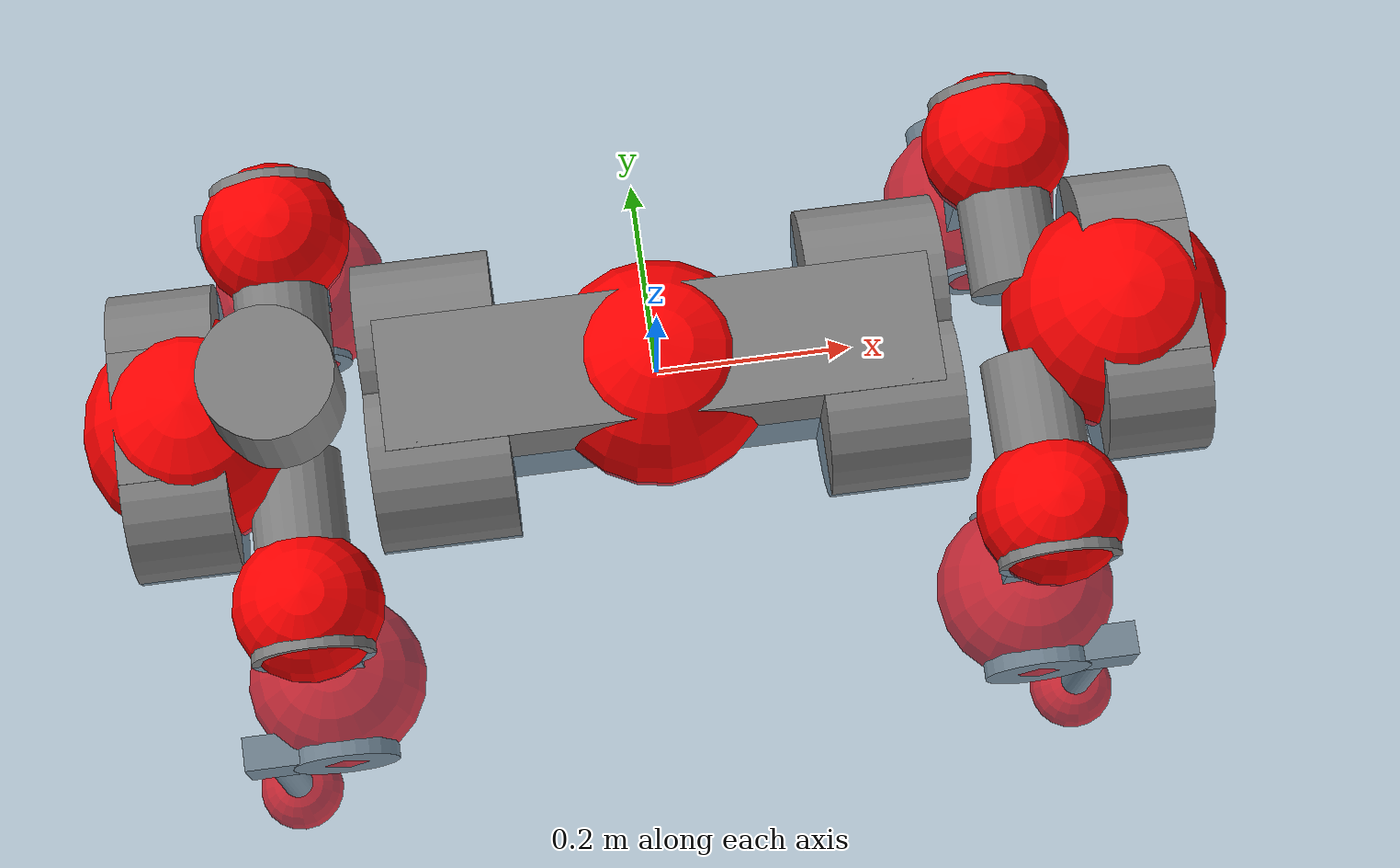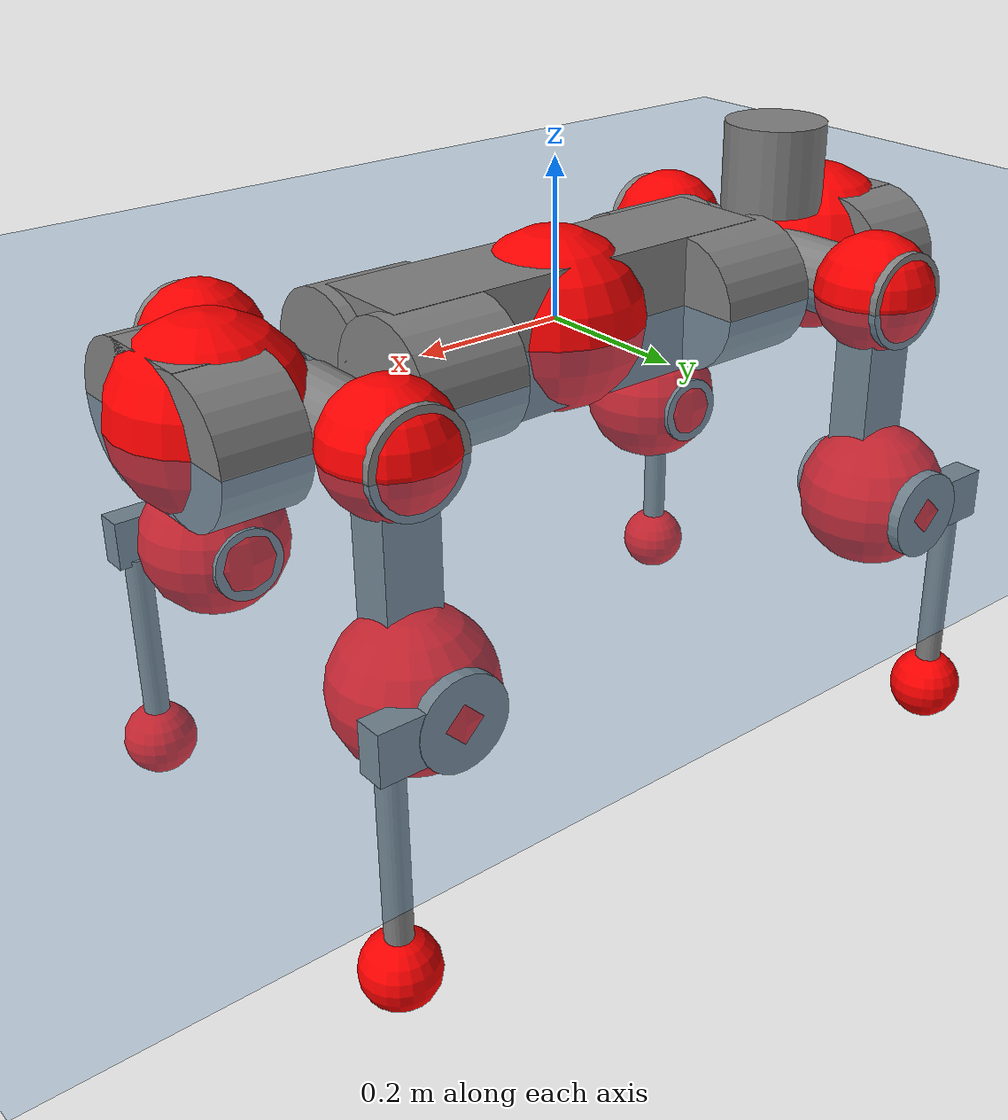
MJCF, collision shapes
<mujoco model="anymal_c">
  <compiler angle="radian" assetdir="assets" balanceinertia="true" inertiafromgeom="false"/>

  <option timestep="0.005" density="1.2" viscosity="2e-05"/>

  <size nkey="1"/>

  <visual>
    <quality shadowsize="8192"/>
    <map shadowclip="0.5"/>
  </visual>

  <default>
    <default class="/">
      <material specular="0" shininess="0.25"/>
      <geom contype="0" conaffinity="0" group="1" solref="-1000 -80"/>
      <site size="0.01 0.005 0.005" group="5"/>
      <general forcelimited="true" forcerange="-80 80" biastype="affine" gainprm="80" biasprm="0 -80 -2"/>
      <default class="anymal_c">
        <joint armature="0.01" damping="0.01" frictionloss="0.1"/>
        <default class="visual">
          <geom type="mesh" group="2"/>
          <default class="visual_zflip"/>
        </default>
        <default class="collision">
          <geom type="cylinder" group="3"/>
          <default class="foot">
            <geom size="0.03 0 0" type="sphere" condim="6" priority="1" friction="0.8 0.02 0.01" solimp="0.015 1 0.03"/>
          </default>
        </default>
      </default>
      <default class="reward_collision_sphere">
        <geom group="5" rgba="1 0 0 1"/>
      </default>
    </default>
  </default>

  <asset>
    <texture type="skybox" colorspace="auto" name="//unnamed_texture_0" builtin="gradient" rgb1="0.95 0.95 0.95" rgb2="0.95 0.95 0.95" width="100" height="600"/>
    <texture type="2d" colorspace="auto" name="texplane" builtin="checker" rgb1="0.345 0.575 0.748" rgb2="0.345 0.575 0.748" markrgb="1 1 1" width="512" height="512"/>
    <texture type="2d" colorspace="linear" name="base" file="base.png"/>
    <texture type="2d" colorspace="linear" name="top_shell" file="top_shell.png"/>
    <texture type="2d" colorspace="linear" name="bottom_shell" file="bottom_shell.png"/>
    <texture type="2d" colorspace="linear" name="remote" file="remote.png"/>
    <texture type="2d" colorspace="linear" name="hatch" file="hatch.png"/>
    <texture type="2d" colorspace="linear" name="handle" file="handle.png"/>
    <texture type="2d" colorspace="linear" name="face" file="face.png"/>
    <texture type="2d" colorspace="linear" name="battery" file="battery.png"/>
    <texture type="2d" colorspace="linear" name="lidar_cage" file="lidar_cage.png"/>
    <texture type="2d" colorspace="linear" name="depth_camera" file="depth_camera.png"/>
    <texture type="2d" colorspace="linear" name="wide_angle_camera" file="wide_angle_camera.png"/>
    <texture type="2d" colorspace="linear" name="lidar" file="lidar.png"/>
    <texture type="2d" colorspace="linear" name="drive" file="drive.png"/>
    <texture type="2d" colorspace="linear" name="hip_l" file="hip_l.png"/>
    <texture type="2d" colorspace="linear" name="shank_l" file="shank_l.png"/>
    <texture type="2d" colorspace="linear" name="foot" file="foot.png"/>
    <texture type="2d" colorspace="linear" name="thigh" file="thigh.png"/>
    <texture type="2d" colorspace="linear" name="shank_r" file="shank_r.png"/>
    <texture type="2d" colorspace="linear" name="hip_r" file="hip_r.png"/>
    <material name="MatPlane" class="/" texture="texplane" texuniform="true" texrepeat="2 2" specular="0.9" shininess="0.5"/>
    <material name="black_plastic" class="/" rgba="0.007 0.007 0.007 1"/>
    <material name="green" class="/" rgba="0.052 0.178 0.033 1"/>
    <material name="red" class="/" rgba="0.178 0.006 0.005 1"/>
    <material name="yellow" class="/" rgba="0.178 0.119 0.006 1"/>
    <material name="lwl" class="/" rgba="0.8 0.8 0.8 1"/>
    <material name="base" class="/" texture="base"/>
    <material name="top_shell" class="/" texture="top_shell"/>
    <material name="bottom_shell" class="/" texture="bottom_shell"/>
    <material name="hip_l" class="/" texture="hip_l"/>
    <material name="thigh" class="/" texture="thigh"/>
    <material name="shank_l" class="/" texture="shank_l"/>
    <material name="foot" class="/" texture="foot"/>
    <material name="hip_r" class="/" texture="hip_r"/>
    <material name="shank" class="/" texture="shank_r"/>
    <material name="hatch" class="/" texture="hatch"/>
    <material name="remote" class="/" texture="remote"/>
    <material name="handle" class="/" texture="handle"/>
    <material name="face" class="/" texture="face"/>
    <material name="depth_camera" class="/" texture="depth_camera"/>
    <material name="wide_angle_camera" class="/" texture="wide_angle_camera"/>
    <material name="battery" class="/" texture="battery"/>
    <material name="lidar_cage" class="/" texture="lidar_cage"/>
    <material name="lidar" class="/" texture="lidar"/>
    <material name="drive" class="/" texture="drive"/>
    <mesh name="base_0" class="/" file="base_0.obj"/>
    <mesh name="base_1" class="/" file="base_1.obj"/>
    <mesh name="base_2" class="/" file="base_2.obj"/>
    <mesh name="base_3" class="/" file="base_3.obj"/>
    <mesh name="base_4" class="/" file="base_4.obj"/>
    <mesh name="base_5" class="/" file="base_5.obj"/>
    <mesh name="top_shell" class="/" file="top_shell.obj"/>
    <mesh name="bottom_shell" class="/" file="bottom_shell.obj"/>
    <mesh name="remote" class="/" file="remote.obj"/>
    <mesh name="handle" class="/" file="handle.obj"/>
    <mesh name="face" class="/" file="face.obj"/>
    <mesh name="wide_angle_camera" class="/" file="wide_angle_camera.obj"/>
    <mesh name="depth_camera" class="/" file="depth_camera.obj"/>
    <mesh name="battery" class="/" file="battery.obj"/>
    <mesh name="lidar_cage" class="/" file="lidar_cage.obj"/>
    <mesh name="lidar" class="/" file="lidar.obj"/>
    <mesh name="drive" class="/" file="drive.obj"/>
    <mesh name="hip_l" class="/" file="hip_l.obj"/>
    <mesh name="thigh" class="/" file="thigh.obj"/>
    <mesh name="shank_l" class="/" file="shank_l.obj"/>
    <mesh name="foot" class="/" file="foot.obj"/>
    <mesh name="hip_r" class="/" file="hip_r.obj"/>
    <mesh name="hatch" class="/" file="hatch.obj"/>
    <mesh name="shank_r" class="/" file="shank_r.obj"/>
  </asset>

  <worldbody>
    <geom name="floor" class="/" size="100 100 0.125" type="plane" group="0" material="MatPlane"/>
    <light name="toplight_shadow" class="/" pos="0 0 5" dir="0.0990148 0.0990148 -0.990148" type="directional" ambient="0.04 0.04 0.04" diffuse="0.55 0.55 0.55" specular="0.12 0.12 0.12"/>
    <light name="toplight_fill" class="/" pos="0 0 5" dir="0.0990148 0.0990148 -0.990148" type="directional" castshadow="false" ambient="0.04 0.04 0.04" diffuse="0.3 0.3 0.3" specular="0.08 0.08 0.08"/>
    <body name="trunk" childclass="anymal_c" pos="0.00158216 -0.00102489 -0.000369642" quat="1 -0.000174534 7.73971e-05 4.30785e-05">
      <inertial pos="0.00250208 -0.000463811 0.0472835" quat="0.497814 0.501641 0.501848 0.498684" mass="17.0484" diaginertia="0.836187 0.35697 0.176469"/>
      <joint name="//unnamed_joint_0" type="free" armature="0" damping="0" frictionloss="0"/>
      <geom name="//unnamed_geom_1" class="visual" material="green" mesh="base_0"/>
      <geom name="//unnamed_geom_2" class="visual" material="yellow" mesh="base_1"/>
      <geom name="//unnamed_geom_3" class="visual" material="red" mesh="base_2"/>
      <geom name="//unnamed_geom_4" class="visual" material="black_plastic" mesh="base_3"/>
      <geom name="//unnamed_geom_5" class="visual" material="lwl" mesh="base_4"/>
      <geom name="//unnamed_geom_6" class="visual" material="base" mesh="base_5"/>
      <geom name="trunk_1" class="collision" size="0.280464 0.0676981 0.0870404" type="box"/>
      <geom name="trunk_2" class="collision" size="0.0870404 0.0701159" pos="0.228098 0.0625307 0" quat="0.707107 0 0.707107 0"/>
      <geom name="trunk_3" class="collision" size="0.0870404 0.0701159" pos="-0.228098 0.0625307 0" quat="0.707107 0 0.707107 0"/>
      <geom name="trunk_4" class="collision" size="0.0870404 0.0701159" pos="0.228098 -0.0625307 0" quat="0.707107 0 0.707107 0"/>
      <geom name="trunk_5" class="collision" size="0.0870404 0.0701159" pos="-0.228098 -0.0625307 0" quat="0.707107 0 0.707107 0"/>
      <geom name="//unnamed_geom_12" class="visual" material="top_shell" mesh="top_shell"/>
      <geom name="//unnamed_geom_13" class="visual" material="bottom_shell" mesh="bottom_shell"/>
      <geom name="//unnamed_geom_14" class="visual" material="remote" mesh="remote"/>
      <geom name="//unnamed_geom_15" class="visual" material="handle" mesh="handle"/>
      <geom name="//unnamed_geom_16" class="visual" pos="0.434696 0 0" quat="1 0 0 0" material="face" mesh="face"/>
      <geom name="trunk_6" class="collision" size="0.0531914 0.0676981 0.0870404" pos="0.492376 0 0" type="box"/>
      <geom name="//unnamed_geom_18" class="collision" size="0.0870404 0.0531914" pos="0.492376 0.0625307 0" quat="0.707107 0 0.707107 0"/>
      <geom name="//unnamed_geom_19" class="collision" size="0.0870404 0.0531914" pos="0.492376 -0.0625307 0" quat="0.707107 0 0.707107 0"/>
      <geom name="//unnamed_geom_20" class="visual" pos="0.48414 0 -0.0273329" quat="0.965926 0 0.258819 0" material="depth_camera" mesh="depth_camera"/>
      <geom name="//unnamed_geom_21" class="visual" pos="0.537996 0 0.0143611" material="wide_angle_camera" mesh="wide_angle_camera"/>
      <geom name="//unnamed_geom_22" class="visual_zflip" pos="-0.434696 0 0" quat="0 0 0 1" material="face" mesh="face"/>
      <geom name="trunk_7" class="collision" size="0.0531914 0.0676981 0.0870404" pos="-0.492376 0 0" quat="0 0 0 1" type="box"/>
      <geom name="//unnamed_geom_24" class="collision" size="0.0870404 0.0531914" pos="-0.492376 -0.0625307 0" quat="0 -0.707107 0 0.707107"/>
      <geom name="//unnamed_geom_25" class="collision" size="0.0870404 0.0531914" pos="-0.492376 0.0625307 0" quat="0 -0.707107 0 0.707107"/>
      <geom name="//unnamed_geom_26" class="visual" pos="-0.48414 0 -0.0273329" quat="0 -0.258819 0 0.965926" material="depth_camera" mesh="depth_camera"/>
      <geom name="//unnamed_geom_27" class="visual_zflip" pos="-0.537996 0 0.0143611" quat="0 0 0 1" material="wide_angle_camera" mesh="wide_angle_camera"/>
      <geom name="//unnamed_geom_28" class="visual" material="battery" mesh="battery"/>
      <geom name="//unnamed_geom_29" class="visual" pos="0 0.0662582 0.0285479" quat="0.683013 -0.183013 0.183013 0.683013" material="depth_camera" mesh="depth_camera"/>
      <geom name="//unnamed_geom_30" class="visual" pos="0 -0.0662582 0.0285479" quat="0.683013 0.183013 0.183013 -0.683013" material="depth_camera" mesh="depth_camera"/>
      <geom name="//unnamed_geom_31" class="visual" pos="-0.381736 0 0.0705106" quat="1 0 0 0" material="lidar_cage" mesh="lidar_cage"/>
      <geom name="trunk_8" class="collision" size="0.0676981 0.058027" pos="-0.381736 0 0.12807"/>
      <geom name="//unnamed_geom_33" class="visual" pos="-0.381736 -6.10637e-05 0.136416" quat="0.707107 0 0 -0.707107" material="lidar" mesh="lidar"/>
      <geom name="//unnamed_geom_34" class="visual" pos="0.314512 0.0929262 -1.13905e-09" quat="0.258819 0.965926 0 0" material="drive" mesh="drive"/>
      <geom name="//unnamed_geom_35" class="visual" pos="0.314512 -0.0929262 1.13905e-09" quat="0.258819 -0.965926 0 0" material="drive" mesh="drive"/>
      <geom name="//unnamed_geom_36" class="visual" pos="-0.314512 0.0929262 1.13905e-09" quat="0 0 0.965926 -0.258819" material="drive" mesh="drive"/>
      <geom name="//unnamed_geom_37" class="visual" pos="-0.314512 -0.0929262 -1.13905e-09" quat="0 0 -0.965926 -0.258819" material="drive" mesh="drive"/>
      <geom name="//unnamed_geom_38" class="visual" pos="0.121652 0 0.0700309" quat="1 0 0 0" material="hatch" mesh="hatch"/>
      <geom name="//unnamed_geom_39" class="reward_collision_sphere" size="0.116054"/>
      <geom name="//unnamed_geom_40" class="reward_collision_sphere" size="0.116054" pos="0.471926 0 0"/>
      <geom name="//unnamed_geom_41" class="reward_collision_sphere" size="0.116054" pos="-0.471926 0 0"/>
      <site name="imu" pos="0.257781 0.0051303 0.0339783" size="0.00967116"/>
      <camera name="track" pos="0 -1.78659 0" quat="0.707107 0.707107 0 0" mode="trackcom"/>
      <camera name="ego_camera" pos="0.471926 0 -0.0383731" quat="-0.5 -0.5 0.5 0.5"/>
      <body name="LF_HIP" pos="0.315362 0.0933498 0.00129305" quat="0.258963 0.965887 -0.00046686 -0.000369088">
        <inertial pos="0.0575915 -0.012357 -0.00766713" quat="-0.128077 0.709287 -0.13494 0.679926" mass="2.52513" diaginertia="0.00745083 0.00278866 0.00266033"/>
        <joint name="LF_HAA" pos="0 0 0" axis="0.999901 0.00971774 -0.0101859" range="-0.72788 0.491028" armature="0.00866821" damping="0.0104012" frictionloss="0.09251"/>
        <geom name="//unnamed_geom_42" class="visual" pos="0 -6.70051e-05 1.10055e-05" quat="0.258819 -0.965926 0 0" material="hip_l" mesh="hip_l"/>
        <geom name="//unnamed_geom_43" class="visual" pos="0.0628186 -0.0740951 -0.0432672" quat="0.183013 -0.683013 0.683013 0.183013" material="drive" mesh="drive"/>
        <geom name="//unnamed_geom_44" class="collision" size="0.0483558 0.0676981" pos="0.0628186 -0.0106836 -0.00662416" quat="-0.353553 -0.612372 0.612372 -0.353553"/>
        <body name="LF_THIGH" pos="0.063645 -0.0646048 -0.0404569" quat="0.18311 -0.683219 0.682707 0.183285">
          <inertial pos="0.0325691 4.66296e-05 -0.237824" quat="0.992682 -0.0074287 -0.083003 0.0873964" mass="2.81199" diaginertia="0.0386912 0.0171895 0.00345233"/>
          <joint name="LF_HFE" pos="0 0 0" axis="0.999993 -0.0032983 -0.00151042" range="-3.16348 3.13789" armature="0.0102585" damping="0.0118485" frictionloss="0.0991629"/>
          <geom name="//unnamed_geom_45" class="visual" pos="0.00309242 4.87292e-06 0" quat="0.707107 0 0 -0.707107" material="thigh" mesh="thigh"/>
          <geom name="//unnamed_geom_46" class="collision" size="0.0628625 0.0386846" pos="0.041949 0 0" quat="0.5 0.5 -0.5 -0.5"/>
          <geom name="//unnamed_geom_47" class="collision" size="0.0362668 0.0290135 0.136667" pos="0.0314617 0 -0.135566" quat="0.707107 0 0 -0.707107" type="box"/>
          <geom name="//unnamed_geom_48" class="visual" pos="0.105187 0 -0.273408" quat="1 0 0 0" material="drive" mesh="drive"/>
          <geom name="//unnamed_geom_49" class="collision" size="0.0483558 0.0676981" pos="0.0317763 0 -0.273408" quat="0.707107 0 0.707107 0"/>
          <geom name="//unnamed_geom_50" class="reward_collision_sphere" size="0.0773693" pos="0.0262181 0 0"/>
          <body name="LF_SHANK" pos="0.105486 -0.0026221 -0.272956" quat="1 9.7726e-05 3.52795e-05 5.72686e-05">
            <inertial pos="0.00482691 -0.0544552 -0.0774996" quat="0.993558 -0.10981 0.0059257 -0.0273873" mass="0.52782" diaginertia="0.0127347 0.00524498 0.000891767"/>
            <joint name="LF_KFE" pos="0 0 0" axis="0.999992 0.00239099 -0.00309394" range="-3.14137 3.13363" armature="0.0097133" damping="0.00438333" frictionloss="0.0992267"/>
            <geom name="//unnamed_geom_51" class="visual" pos="0.00100837 0.00537668 0" quat="0.707107 0 0 -0.707107" material="shank_l" mesh="shank_l"/>
            <geom name="LF_kfe_act" class="collision" size="0.058027 0.0193423" pos="0.0209745 0 0" quat="0.5 0.5 -0.5 -0.5"/>
            <geom name="//unnamed_geom_53" class="collision" size="0.0556082 0.0326402 0.0183752" pos="0.0209745 -0.0513636 0" quat="0.5 0.5 -0.5 -0.5" type="box"/>
            <geom name="//unnamed_geom_54" class="visual" pos="0.0136856 -0.0768327 -0.324224" quat="0.382683 0 0 -0.92388" material="foot" mesh="foot"/>
            <geom name="LF_calf" class="collision" size="0.0169245 0.136607" pos="0.0136859 -0.0785654 -0.162112" quat="0.707107 0 0 -0.707107"/>
            <geom name="LF_foot" class="foot" size="0.0298194" pos="0.0136859 -0.0785654 -0.302639" quat="0.707107 0 0 -0.707107"/>
            <geom name="//unnamed_geom_57" class="reward_collision_sphere" size="0.0967116" pos="-0.0524362 0 0"/>
            <geom name="//unnamed_geom_58" class="reward_collision_sphere" size="0.0483558" pos="0.0136859 -0.0785654 -0.302639"/>
            <site name="LF_foot" class="foot" pos="0.0136859 -0.0785654 -0.302639" quat="0.707107 0 0 -0.707107" size="0.00967116"/>
          </body>
        </body>
      </body>
      <body name="RF_HIP" pos="0.312887 -0.0913337 -0.00034383" quat="0.258927 -0.965897 -3.58949e-05 6.53422e-05">
        <inertial pos="0.0617107 0.0131497 -0.00984022" quat="0.134019 0.679622 0.128246 0.709723" mass="2.59189" diaginertia="0.00759802 0.00286905 0.00273957"/>
        <joint name="RF_HAA" pos="0 0 0" axis="0.999953 -0.0076084 0.00596227" range="-0.530995 0.73227" armature="0.00980363" damping="0.0131928" frictionloss="0.0909973"/>
        <geom name="//unnamed_geom_59" class="visual" pos="0 6.70046e-05 1.10055e-05" quat="0.258819 0.965926 0 0" material="hip_r" mesh="hip_r"/>
        <geom name="//unnamed_geom_60" class="visual" pos="0.0628186 0.0740951 -0.0432672" quat="0.183013 0.683013 0.683013 -0.183013" material="drive" mesh="drive"/>
        <geom name="//unnamed_geom_61" class="collision" size="0.0483558 0.0676981" pos="0.0628186 0.0106836 -0.00662416" quat="-0.353553 0.612372 0.612372 0.353553"/>
        <body name="RF_THIGH" pos="0.0632536 0.0657346 -0.0409843" quat="0.183066 0.682934 0.683103 -0.182916">
          <inertial pos="0.0332162 0.00226388 -0.235932" quat="0.992763 -0.00574629 -0.080868 0.0885924" mass="2.74768" diaginertia="0.0381187 0.0168746 0.00336416"/>
          <joint name="RF_HFE" pos="0 0 0" axis="0.999988 -0.00284932 0.00407568" stiffness="0.00302896" range="-3.15275 3.12311" armature="0.0100379" damping="0.00293838" frictionloss="0.0970116"/>
          <geom name="//unnamed_geom_62" class="visual" pos="0.00309242 4.87292e-06 0" quat="0.707107 0 0 -0.707107" material="thigh" mesh="thigh"/>
          <geom name="//unnamed_geom_63" class="collision" size="0.0628625 0.0386846" pos="0.041949 0 0" quat="0.5 0.5 0.5 0.5"/>
          <geom name="//unnamed_geom_64" class="collision" size="0.0362668 0.0290135 0.136667" pos="0.0314617 0 -0.135566" quat="0.707107 0 0 0.707107" type="box"/>
          <geom name="//unnamed_geom_65" class="visual" pos="0.105187 0 -0.273408" quat="1 0 0 0" material="drive" mesh="drive"/>
          <geom name="//unnamed_geom_66" class="collision" size="0.0483558 0.0676981" pos="0.0317763 0 -0.273408" quat="0.707107 0 0.707107 0"/>
          <geom name="//unnamed_geom_67" class="reward_collision_sphere" size="0.0773693" pos="0.0262181 0 0"/>
          <body name="RF_SHANK" pos="0.104643 -0.000792284 -0.271877" quat="0.999999 0.000457924 0.000757805 -0.000690729">
            <inertial pos="0.0083255 0.0548025 -0.0759279" quat="0.992934 0.115833 -0.000365748 0.0257984" mass="0.521822" diaginertia="0.0127081 0.00531821 0.000929863"/>
            <joint name="RF_KFE" pos="0 0 0" axis="0.999999 -0.000892548 -0.000551715" range="-3.1718 3.13001" armature="0.00989473" damping="0.0166619" frictionloss="0.103907"/>
            <geom name="//unnamed_geom_68" class="visual" pos="0.00100836 -0.00537667 0" quat="0.707107 0 0 0.707107" material="shank" mesh="shank_r"/>
            <geom name="RF_kfe_act" class="collision" size="0.058027 0.0193423" pos="0.0209745 0 0" quat="0.5 0.5 0.5 0.5"/>
            <geom name="//unnamed_geom_70" class="collision" size="0.0556082 0.0326402 0.0183752" pos="0.0209745 0.0513636 0" quat="0.5 0.5 0.5 0.5" type="box"/>
            <geom name="//unnamed_geom_71" class="visual" pos="0.0136861 0.0768327 -0.324224" quat="0.382683 0 0 0.92388" material="foot" mesh="foot"/>
            <geom name="RF_calf" class="collision" size="0.0169245 0.136607" pos="0.0136859 0.0785654 -0.162112" quat="0.707107 0 0 0.707107"/>
            <geom name="RF_foot" class="foot" size="0.0287659" pos="0.0136859 0.0785654 -0.302639" quat="0.707107 0 0 0.707107"/>
            <geom name="//unnamed_geom_74" class="reward_collision_sphere" size="0.0967116" pos="-0.0524362 0 0"/>
            <geom name="//unnamed_geom_75" class="reward_collision_sphere" size="0.0483558" pos="0.0136859 0.0785654 -0.302639"/>
            <site name="RF_foot" class="foot" pos="0.0136859 0.0785654 -0.302639" quat="0.707107 0 0 0.707107" size="0.00967116"/>
          </body>
        </body>
      </body>
      <body name="LH_HIP" pos="-0.311512 0.0920069 0.00046205" quat="6.62569e-05 0.000192383 0.965974 -0.258639">
        <inertial pos="0.0615581 0.0110803 -0.00778347" quat="0.130056 0.67667 0.125964 0.713677" mass="2.53689" diaginertia="0.00746954 0.00278819 0.00262377"/>
        <joint name="LH_HAA" pos="0 0 0" axis="0.999996 0.00118416 0.00262706" range="-0.49175 0.70199" armature="0.0096979" damping="0.0102288" frictionloss="0.101396"/>
        <geom name="//unnamed_geom_76" class="visual" pos="0 6.70046e-05 1.10055e-05" quat="-0.258819 -0.965926 0 0" material="hip_r" mesh="hip_r"/>
        <geom name="//unnamed_geom_77" class="visual" pos="0.0628186 0.0740951 -0.0432672" quat="0.183013 0.683013 0.683013 -0.183013" material="drive" mesh="drive"/>
        <geom name="//unnamed_geom_78" class="collision" size="0.0483558 0.0676981" pos="0.0628186 0.0106836 -0.00662416" quat="-0.353553 0.612372 0.612372 0.353553"/>
        <body name="LH_THIGH" pos="0.0615306 0.0642247 -0.0407355" quat="0.182828 0.683118 0.682876 -0.183312">
          <inertial pos="0.0322791 0.00194524 -0.235182" quat="0.993073 -0.00746735 -0.0780936 0.0874685" mass="2.78591" diaginertia="0.0385029 0.0171346 0.00331828"/>
          <joint name="LH_HFE" pos="0 0 0" axis="0.999977 0.00373967 0.00569209" range="-3.13875 3.13644" armature="0.0105895" damping="0.00426619" frictionloss="0.102651"/>
          <geom name="//unnamed_geom_79" class="visual" pos="0.00309242 4.87292e-06 0" quat="0.707107 0 0 -0.707107" material="thigh" mesh="thigh"/>
          <geom name="//unnamed_geom_80" class="collision" size="0.0628625 0.0386846" pos="0.041949 0 0" quat="0.5 0.5 -0.5 -0.5"/>
          <geom name="//unnamed_geom_81" class="collision" size="0.0362668 0.0290135 0.136667" pos="0.0314617 0 -0.135566" quat="0.707107 0 0 -0.707107" type="box"/>
          <geom name="//unnamed_geom_82" class="visual" pos="0.105187 0 -0.273408" quat="1 0 0 0" material="drive" mesh="drive"/>
          <geom name="//unnamed_geom_83" class="collision" size="0.0483558 0.0676981" pos="0.0317763 0 -0.273408" quat="0.707107 0 0.707107 0"/>
          <geom name="//unnamed_geom_84" class="reward_collision_sphere" size="0.0773693" pos="0.0262181 0 0"/>
          <body name="LH_SHANK" pos="0.105749 0.000324835 -0.276166" quat="0.999999 0.000988372 -0.000514356 -0.000633029">
            <inertial pos="0.00629276 0.0545542 -0.0749459" quat="0.993069 0.11522 -0.0030317 0.0230166" mass="0.521019" diaginertia="0.0129496 0.00532138 0.00090676"/>
            <joint name="LH_KFE" pos="0 0 0" axis="0.999972 0.0012572 -0.00733142" range="-3.14616 3.14275" armature="0.00952081" damping="0.00743287" frictionloss="0.0928374"/>
            <geom name="//unnamed_geom_85" class="visual" pos="0.00100836 -0.00537667 0" quat="-0.707107 0 0 -0.707107" material="shank" mesh="shank_r"/>
            <geom name="LH_kfe_act" class="collision" size="0.058027 0.0193423" pos="0.0209745 0 0" quat="0.5 0.5 -0.5 -0.5"/>
            <geom name="//unnamed_geom_87" class="collision" size="0.0556082 0.0326402 0.0183752" pos="0.0209745 0.0513636 0" quat="0.5 0.5 -0.5 -0.5" type="box"/>
            <geom name="//unnamed_geom_88" class="visual" pos="0.0136861 0.0768327 -0.324224" quat="-0.382683 0 0 -0.92388" material="foot" mesh="foot"/>
            <geom name="LH_calf" class="collision" size="0.0169245 0.136607" pos="0.0136859 0.0785654 -0.162112" quat="0.707107 0 0 -0.707107"/>
            <geom name="LH_foot" class="foot" size="0.0293851" pos="0.0136859 0.0785654 -0.302639" quat="0.707107 0 0 -0.707107"/>
            <geom name="//unnamed_geom_91" class="reward_collision_sphere" size="0.0967116" pos="-0.0524362 0 0"/>
            <geom name="//unnamed_geom_92" class="reward_collision_sphere" size="0.0483558" pos="0.0136859 0.0785654 -0.302639"/>
            <site name="LH_foot" class="foot" pos="0.0136859 0.0785654 -0.302639" quat="0.707107 0 0 -0.707107" size="0.00967116"/>
          </body>
        </body>
      </body>
      <body name="RH_HIP" pos="-0.316474 -0.0939763 0.000214228" quat="-3.05416e-06 -2.19128e-05 -0.965782 -0.259357">
        <inertial pos="0.0598854 -0.014493 -0.00795806" quat="-0.119232 0.714053 -0.135584 0.676409" mass="2.51478" diaginertia="0.00737256 0.00279178 0.00266199"/>
        <joint name="RH_HAA" pos="0 0 0" axis="0.999927 -0.0117243 -0.00281873" stiffness="0.00178582" range="-0.726095 0.472781" armature="0.0100292" damping="0.00612624" frictionloss="0.0951359"/>
        <geom name="//unnamed_geom_93" class="visual" pos="0 -6.70051e-05 1.10055e-05" quat="-0.258819 0.965926 0 0" material="hip_l" mesh="hip_l"/>
        <geom name="//unnamed_geom_94" class="visual" pos="0.0628186 -0.0740951 -0.0432672" quat="-0.183013 0.683013 -0.683013 -0.183013" material="drive" mesh="drive"/>
        <geom name="//unnamed_geom_95" class="collision" size="0.0483558 0.0676981" pos="0.0628186 -0.0106836 -0.00662416" quat="0.353553 0.612372 -0.612372 0.353553"/>
        <body name="RH_THIGH" pos="0.0630243 -0.0640021 -0.0388651" quat="-0.183201 0.682831 -0.68304 -0.183401">
          <inertial pos="0.0318574 -0.000551352 -0.236398" quat="0.993761 0.00504076 -0.0760799 0.0814011" mass="2.78512" diaginertia="0.0382987 0.0171996 0.00349002"/>
          <joint name="RH_HFE" pos="0 0 0" axis="1 -0.000547828 -0.000746485" range="-3.14642 3.12303" armature="0.0101919" damping="0" frictionloss="0.100735"/>
          <geom name="//unnamed_geom_96" class="visual" pos="0.00309242 4.87292e-06 0" quat="0.707107 0 0 -0.707107" material="thigh" mesh="thigh"/>
          <geom name="//unnamed_geom_97" class="collision" size="0.0628625 0.0386846" pos="0.041949 0 0" quat="0.5 0.5 0.5 0.5"/>
          <geom name="//unnamed_geom_98" class="collision" size="0.0362668 0.0290135 0.136667" pos="0.0314617 0 -0.135566" quat="0.707107 0 0 0.707107" type="box"/>
          <geom name="//unnamed_geom_99" class="visual" pos="0.105187 0 -0.273408" quat="1 0 0 0" material="drive" mesh="drive"/>
          <geom name="//unnamed_geom_100" class="collision" size="0.0483558 0.0676981" pos="0.0317763 0 -0.273408" quat="0.707107 0 0.707107 0"/>
          <geom name="//unnamed_geom_101" class="reward_collision_sphere" size="0.0773693" pos="0.0262181 0 0"/>
          <body name="RH_SHANK" pos="0.10525 9.92726e-05 -0.273446" quat="1 -0.000218514 -0.000159759 1.38297e-05">
            <inertial pos="0.00432472 -0.0567608 -0.0754998" quat="0.992926 -0.115968 0.000109577 -0.0254918" mass="0.536808" diaginertia="0.0127977 0.00530902 0.000904096"/>
            <joint name="RH_KFE" pos="0 0 0" axis="0.999984 -0.00182602 0.00540461" stiffness="0.00265367" range="-3.11339 3.17394" armature="0.00960712" damping="0.00685349" frictionloss="0.106555"/>
            <geom name="//unnamed_geom_102" class="visual" pos="0.00100837 0.00537668 0" quat="0.707107 0 0 -0.707107" material="shank_l" mesh="shank_l"/>
            <geom name="RH_kfe_act" class="collision" size="0.058027 0.0193423" pos="0.0209745 0 0" quat="0.5 0.5 0.5 0.5"/>
            <geom name="//unnamed_geom_104" class="collision" size="0.0556082 0.0326402 0.0183752" pos="0.0209745 -0.0513636 0" quat="0.5 0.5 0.5 0.5" type="box"/>
            <geom name="//unnamed_geom_105" class="visual" pos="0.0136856 -0.0768327 -0.324224" quat="0.382683 0 0 -0.92388" material="foot" mesh="foot"/>
            <geom name="RH_calf" class="collision" size="0.0169245 0.136607" pos="0.0136859 -0.0785654 -0.162112" quat="0.707107 0 0 0.707107"/>
            <geom name="RH_foot" class="foot" size="0.0283606" pos="0.0136859 -0.0785654 -0.302639" quat="0.707107 0 0 0.707107"/>
            <geom name="//unnamed_geom_108" class="reward_collision_sphere" size="0.0967116" pos="-0.0524362 0 0"/>
            <geom name="//unnamed_geom_109" class="reward_collision_sphere" size="0.0483558" pos="0.0136859 -0.0785654 -0.302639"/>
            <site name="RH_foot" class="foot" pos="0.0136859 -0.0785654 -0.302639" quat="0.707107 0 0 0.707107" size="0.00967116"/>
          </body>
        </body>
      </body>
    </body>
  </worldbody>

  <contact>
    <pair class="/" geom1="floor" geom2="LF_foot" name="//unnamed_contact_0"/>
    <pair class="/" geom1="floor" geom2="RF_foot" name="//unnamed_contact_1"/>
    <pair class="/" geom1="floor" geom2="LH_foot" name="//unnamed_contact_2"/>
    <pair class="/" geom1="floor" geom2="RH_foot" name="//unnamed_contact_3"/>
  </contact>

  <actuator>
    <general name="LF_HAA" class="/" joint="LF_HAA" forcerange="-77.5654 77.5654" gainprm="77.6789" biasprm="0 -77.6789 -1.88101"/>
    <general name="LF_HFE" class="/" joint="LF_HFE" forcerange="-74.1535 74.1535" gainprm="77.6789" biasprm="0 -77.6789 -1.88101"/>
    <general name="LF_KFE" class="/" joint="LF_KFE" forcerange="-74.8036 74.8036" gainprm="77.6789" biasprm="0 -77.6789 -1.88101"/>
    <general name="RF_HAA" class="/" joint="RF_HAA" forcerange="-78.642 78.642" gainprm="77.6789" biasprm="0 -77.6789 -1.88101"/>
    <general name="RF_HFE" class="/" joint="RF_HFE" forcerange="-79.1945 79.1945" gainprm="77.6789" biasprm="0 -77.6789 -1.88101"/>
    <general name="RF_KFE" class="/" joint="RF_KFE" forcerange="-76.7312 76.7312" gainprm="77.6789" biasprm="0 -77.6789 -1.88101"/>
    <general name="LH_HAA" class="/" joint="LH_HAA" forcerange="-77.4508 77.4508" gainprm="77.6789" biasprm="0 -77.6789 -1.88101"/>
    <general name="LH_HFE" class="/" joint="LH_HFE" forcerange="-77.589 77.589" gainprm="77.6789" biasprm="0 -77.6789 -1.88101"/>
    <general name="LH_KFE" class="/" joint="LH_KFE" forcerange="-80.3868 80.3868" gainprm="77.6789" biasprm="0 -77.6789 -1.88101"/>
    <general name="RH_HAA" class="/" joint="RH_HAA" forcerange="-78.1039 78.1039" gainprm="77.6789" biasprm="0 -77.6789 -1.88101"/>
    <general name="RH_HFE" class="/" joint="RH_HFE" forcerange="-74.6407 74.6407" gainprm="77.6789" biasprm="0 -77.6789 -1.88101"/>
    <general name="RH_KFE" class="/" joint="RH_KFE" forcerange="-71.0039 71.0039" gainprm="77.6789" biasprm="0 -77.6789 -1.88101"/>
  </actuator>

  <sensor>
    <gyro site="imu" name="imu_angular_velocity"/>
    <velocimeter site="imu" name="imu_linear_velocity"/>
    <framelinvel objtype="site" objname="LF_foot" name="LF_foot_global_linear_velocity"/>
    <framelinvel objtype="site" objname="RF_foot" name="RF_foot_global_linear_velocity"/>
    <framelinvel objtype="site" objname="LH_foot" name="LH_foot_global_linear_velocity"/>
    <framelinvel objtype="site" objname="RH_foot" name="RH_foot_global_linear_velocity"/>
  </sensor>

  <keyframe>
    <key name="home" qpos="0 0 0.55 1 0 0 0 0 0.4 -0.8 0 -0.4 0.8 0 -0.4 0.8 0 0.4 -0.8"/>
  </keyframe>
</mujoco>
